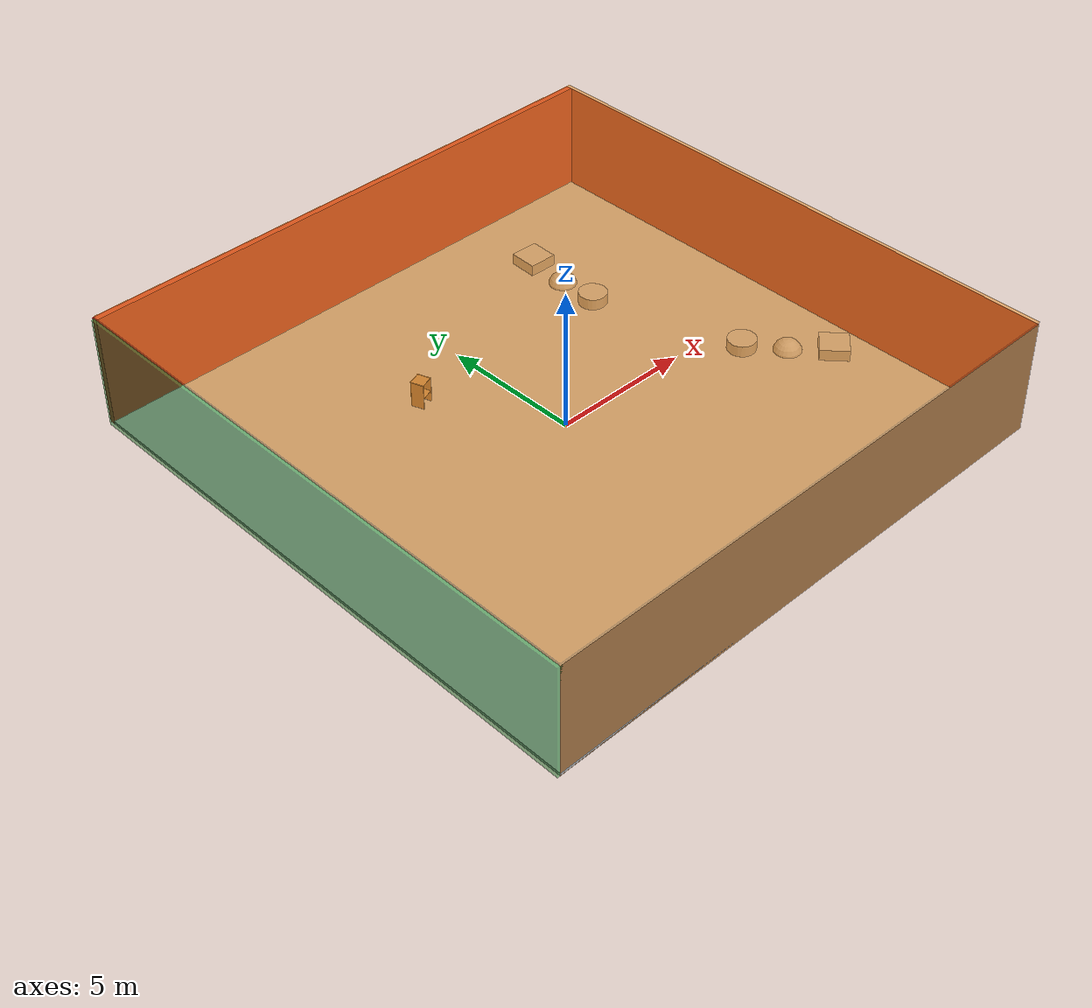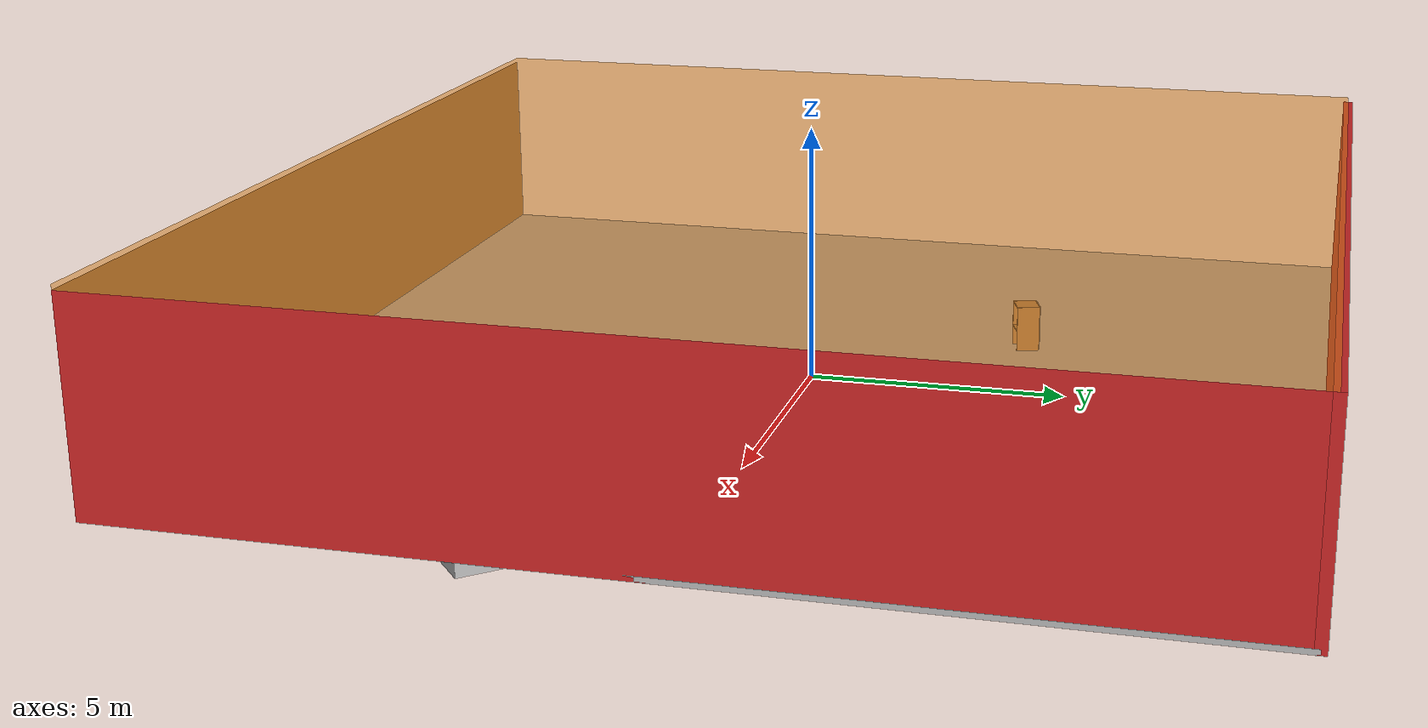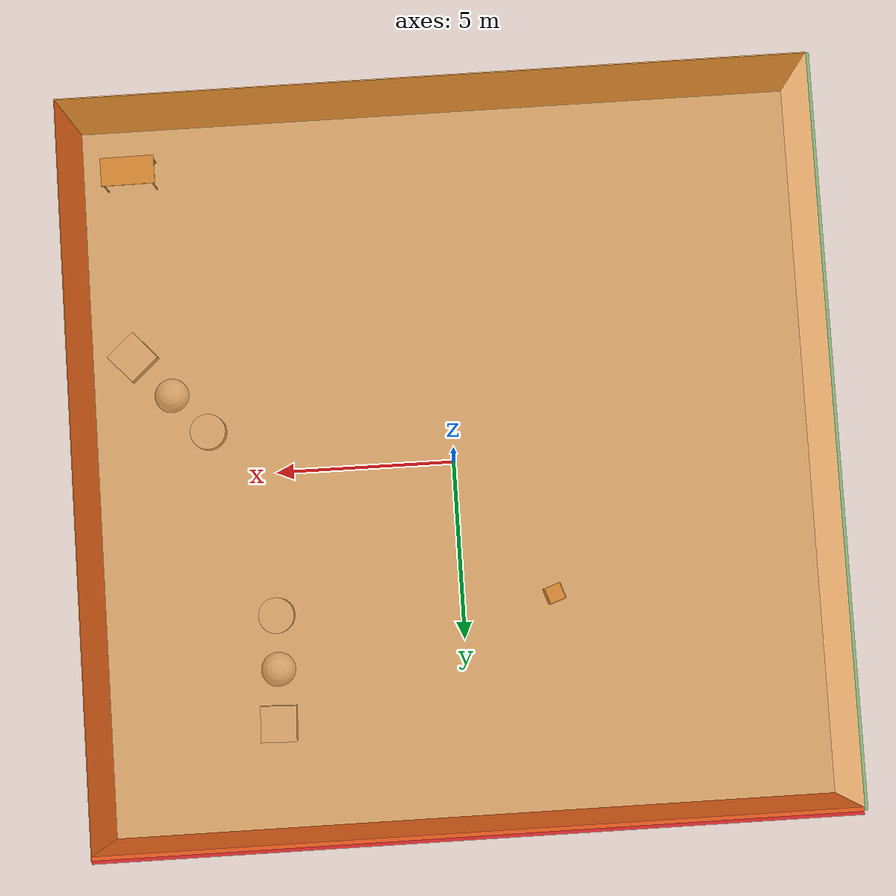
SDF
<sdf version="1.4">
 <world name="default">
  <physics type="ode">
   <max_step_size>0.001</max_step_size>
   <real_time_factor>1</real_time_factor>
   <real_time_update_rate>1000</real_time_update_rate>
   <gravity>0 0 -9.8</gravity>
  </physics>
  <scene><ambient>0.4 0.4 0.4 1</ambient><background>0.7 0.7 0.7 1</background><shadows>1</shadows></scene>
  <model name="Surrounding">
   <static>1</static>
   <link name="Ceiling">
    <collision name="Ceiling_Collision"><geometry><box><size>20 20 0.1</size></box></geometry></collision>
    <visual name="Ceiling_Visual">
     <geometry><box><size>20 20 0.1</size></box></geometry>
     <material>
      <script>
       <uri>file://media/materials/scripts/gazebo.material</uri>
       <name>Gazebo/OrangeTransparent</name>
      </script>
     </material>
    </visual>
    <pose>0 0 4.05 0 0 0</pose>
   </link>
   <link name="Wall_South">
    <collision name="Wall_South_Collision">
     <geometry><box><size>20 0 4</size></box></geometry>
     <pose>0 0 2 0 -0 0</pose>
    </collision>
    <visual name="Wall_South_Visual">
     <pose>0 0 2 0 -0 0</pose>
     <geometry><box><size>20 0 4</size></box></geometry>
     <material>
      <script><uri>file://media/materials/scripts/gazebo.material</uri><name>Gazebo/Wood</name></script>
     </material>
    </visual>
    <velocity_decay><linear>0</linear><angular>0</angular></velocity_decay>
    <pose>0 -10 0 0 -0 0</pose>
   </link>
   <link name="Wall_East">
    <collision name="Wall_21_Collision">
     <geometry><box><size>20 0 4</size></box></geometry>
     <pose>0 0 2 0 -0 0</pose>
    </collision>
    <visual name="Wall_21_Visual">
     <pose>0 0 2 0 -0 0</pose>
     <geometry><box><size>20 0 4</size></box></geometry>
     <material>
      <script><uri>file://media/materials/scripts/gazebo.material</uri><name>Gazebo/Red</name></script>
     </material>
    </visual>
    <velocity_decay><linear>0</linear><angular>0</angular></velocity_decay>
    <pose>10 0 0 0 -0 1.5708</pose>
   </link>
   <link name="Wall_North">
    <collision name="Wall_22_Collision">
     <geometry><box><size>20 0.2 4</size></box></geometry>
     <pose>0 0 2 0 -0 0</pose>
    </collision>
    <visual name="Wall_22_Visual">
     <pose>0 0 2 0 -0 0</pose>
     <geometry><box><size>20 0.2 4</size></box></geometry>
     <material>
      <script><uri>file://media/materials/scripts/gazebo.material</uri><name>Gazebo/Red</name></script>
     </material>
    </visual>
    <velocity_decay><linear>0</linear><angular>0</angular></velocity_decay>
    <pose>0 10 0 0 -0 0</pose>
   </link>
   <link name="Wall_West">
    <collision name="Wall_23_Collision">
     <geometry><box><size>20 0.2 4</size></box></geometry>
     <pose>0 0 2 0 -0 0</pose>
    </collision>
    <visual name="Wall_23_Visual">
     <pose>0 0 2 0 -0 0</pose>
     <geometry><box><size>20 0.2 4</size></box></geometry>
     <material>
      <script><uri>file://media/materials/scripts/gazebo.material</uri><name>Gazebo/GreenTransparent</name></script>
     </material>
    </visual>
    <velocity_decay><linear>0</linear><angular>0</angular></velocity_decay>
    <pose>-10 0 0 0 0 -1.5708</pose>
   </link>
   <link name="Ground_link">
    <collision name="collision">
     <pose>0 0 .05 0 -0 0</pose>
     <geometry><box><size>20 20 0.1</size></box></geometry>
    </collision>
    <visual name="visual">
     <pose>0 0 .05 0 -0 0</pose>
     <geometry><box><size>20 20 0.1</size></box></geometry>
     <material>
      <script><uri>file://media/materials/scripts/gazebo.material</uri><name>Gazebo/LightOff</name></script>
     </material>
    </visual>
   </link>
   <static>1</static>
  </model>
  <spherical_coordinates>
   <surface_model>EARTH_WGS84</surface_model>
   <latitude_deg>0</latitude_deg>
   <longitude_deg>0</longitude_deg>
   <elevation>0</elevation>
   <heading_deg>0</heading_deg>
  </spherical_coordinates>
  <light name="lightball_0" type="diffuse">
   <diffuse>0.8 0.8 0.8 1</diffuse>
   <specular>0.2 0.2 0.2 1</specular>
   <attenuation>
    <range>100</range>
    <constant>0.7</constant>
    <linear>0.01</linear>
    <quadratic>0.001</quadratic>
   </attenuation>
   <direction>-0.5 0.1 -0.9</direction>
   <pose>-9.47890755217 2.65459381779 3.79917862431 0 0 0</pose>
  </light>
  <light name="lightball_1" type="diffuse">
   <diffuse>0.8 0.8 0.8 1</diffuse>
   <specular>0.2 0.2 0.2 1</specular>
   <attenuation>
    <range>100</range>
    <constant>0.7</constant>
    <linear>0.01</linear>
    <quadratic>0.001</quadratic>
   </attenuation>
   <direction>-0.5 0.1 -0.9</direction>
   <pose>-6.43948031084 -4.5144401666 3.54511444971 0 0 0</pose>
  </light>
  <light name="lightball_2" type="diffuse">
   <diffuse>0.8 0.8 0.8 1</diffuse>
   <specular>0.2 0.2 0.2 1</specular>
   <attenuation>
    <range>100</range>
    <constant>0.7</constant>
    <linear>0.01</linear>
    <quadratic>0.001</quadratic>
   </attenuation>
   <direction>-0.5 0.1 -0.9</direction>
   <pose>-8.24441035771 8.45265457165 2.80632126426 0 0 0</pose>
  </light>
  <light name="lightball_3" type="diffuse">
   <diffuse>0.8 0.8 0.8 1</diffuse>
   <specular>0.2 0.2 0.2 1</specular>
   <attenuation>
    <range>100</range>
    <constant>0.7</constant>
    <linear>0.01</linear>
    <quadratic>0.001</quadratic>
   </attenuation>
   <direction>-0.5 0.1 -0.9</direction>
   <pose>-1.02856957732 -7.49712967411 0.806405113259 0 0 0</pose>
  </light>
  <light name="lightball_4" type="diffuse">
   <diffuse>0.8 0.8 0.8 1</diffuse>
   <specular>0.2 0.2 0.2 1</specular>
   <attenuation>
    <range>100</range>
    <constant>0.7</constant>
    <linear>0.01</linear>
    <quadratic>0.001</quadratic>
   </attenuation>
   <direction>-0.5 0.1 -0.9</direction>
   <pose>3.05109654949 8.98826993645 3.10072684507 0 0 0</pose>
  </light>
  <include><uri>model://cabinet</uri><pose>-2.55116941316 3.87907533668 0 0 0 1.90414155232</pose></include>
  <include>
   <uri>model://textured_shapes</uri>
   <pose>5.25876680359 5.50346763991 0 0 0 3.10765813199</pose>
  </include>
  <include><uri>model://table</uri><pose>8.61954594274 -8.67831705642 0 0 0 0.00874979553504</pose></include>
  <include>
   <uri>model://textured_shapes</uri>
   <pose>7.82966172945 -2.36354148934 0 0 0 0.730304551299</pose>
  </include>
 </world>
</sdf>

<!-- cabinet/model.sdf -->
<sdf version="1.5">
  <model name="cabinet">
    <static>true</static>
    <link name="cabinet_bottom_plate">
      <inertial>
        <pose>0 0 -1 0 0 0</pose>
        <inertia>
          <ixx>2.050000</ixx>
          <ixy>0</ixy>
          <ixz>0</ixz>
          <iyy>2.050000</iyy>
          <iyz>0</iyz>
          <izz>2.050000</izz>
        </inertia>
        <mass>25.000000</mass>
      </inertial>
      <collision name="cabinet_bottom_plate_geom">
        <pose>0 0 0.010000 0 0 0</pose>
        <geometry>
          <box>
            <size>0.450000 0.450000 0.020000</size>
          </box>
        </geometry>
      </collision>
      <visual name="cabinet_bottom_plate_geom_visual">
        <pose>0 0 0.010000 0 0 0</pose>
        <geometry>
          <box>
            <size>0.450000 0.450000 0.020000</size>
          </box>
        </geometry>
        <material>
          <script>
            <uri>model://media/materials/scripts/gazebo.material</uri>
            <name>Gazebo/Wood</name>
          </script>
        </material>
      </visual>
      <collision name="cabinet_bottom_plate_geom_cabinet_back_plate">
        <pose>0.235000 0 0.510000 0 0 0</pose>
        <geometry>
          <box>
            <size>0.020000 0.450000 1.020000</size>
          </box>
        </geometry>
      </collision>
      <visual name="cabinet_bottom_plate_geom_cabinet_back_plate_visual">
        <pose>0.235000 0 0.510000 0 0 0</pose>
        <geometry>
          <box>
            <size>0.020000 0.450000 1.020000</size>
          </box>
        </geometry>
        <material>
          <script>
            <uri>model://media/materials/scripts/gazebo.material</uri>
            <name>Gazebo/Wood</name>
          </script>
        </material>
      </visual>
      <collision name="cabinet_bottom_plate_geom_cabinet_left_plate">
        <pose>0 0.235000 0.510000 0 0 0</pose>
        <geometry>
          <box>
            <size>0.450000 0.020000 1.020000</size>
          </box>
        </geometry>
      </collision>
      <visual name="cabinet_bottom_plate_geom_cabinet_left_plate_visual">
        <pose>0 0.235000 0.510000 0 0 0</pose>
        <geometry>
          <box>
            <size>0.450000 0.020000 1.020000</size>
          </box>
        </geometry>
        <material>
          <script>
            <uri>model://media/materials/scripts/gazebo.material</uri>
            <name>Gazebo/Wood</name>
          </script>
        </material>
      </visual>
      <collision name="cabinet_bottom_plate_geom_cabinet_middle_plate">
        <pose>0 0 0.510000 0 0 0</pose>
        <geometry>
          <box>
            <size>0.450000 0.450000 0.020000</size>
          </box>
        </geometry>
      </collision>
      <visual name="cabinet_bottom_plate_geom_cabinet_middle_plate_visual">
        <pose>0 0 0.510000 0 0 0</pose>
        <geometry>
          <box>
            <size>0.450000 0.450000 0.020000</size>
          </box>
        </geometry>
        <material>
          <script>
            <uri>model://media/materials/scripts/gazebo.material</uri>
            <name>Gazebo/Wood</name>
          </script>
        </material>
      </visual>
      <collision name="cabinet_bottom_plate_geom_cabinet_right_plate">
        <pose>0 -0.235000 0.510000 0 0 0</pose>
        <geometry>
          <box>
            <size>0.450000 0.020000 1.020000</size>
          </box>
        </geometry>
      </collision>
      <visual name="cabinet_bottom_plate_geom_cabinet_right_plate_visual">
        <pose>0 -0.235000 0.510000 0 0 0</pose>
        <geometry>
          <box>
            <size>0.450000 0.020000 1.020000</size>
          </box>
        </geometry>
        <material>
          <script>
            <uri>model://media/materials/scripts/gazebo.material</uri>
            <name>Gazebo/Wood</name>
          </script>
        </material>
      </visual>
      <collision name="cabinet_bottom_plate_geom_cabinet_top_plate">
        <pose>0 0 1.010000 0 0 0</pose>
        <geometry>
          <box>
            <size>0.450000 0.450000 0.020000</size>
          </box>
        </geometry>
      </collision>
      <visual name="cabinet_bottom_plate_geom_cabinet_top_plate_visual">
        <pose>0 0 1.010000 0 0 0</pose>
        <geometry>
          <box>
            <size>0.450000 0.450000 0.020000</size>
          </box>
        </geometry>
        <material>
          <script>
            <uri>model://media/materials/scripts/gazebo.material</uri>
            <name>Gazebo/Wood</name>
          </script>
        </material>
      </visual>
    </link>
  </model>
</sdf>

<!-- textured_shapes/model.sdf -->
<sdf version="1.6">
  <model name="textured_shapes">
    <pose>0 0 0.5 0 0 0</pose>
    <link name="box">
      <pose>0 -1.5 0 0 0 0</pose>
      <collision name="collision">
        <geometry>
          <box>
            <size>1 1 1</size>
          </box>
        </geometry>
      </collision>
      <visual name="visual">
        <geometry>
          <box>
            <size>1 1 1</size>
          </box>
        </geometry>
        <material>
          <script>
            <uri>model://../model_source/models/textured_shapes/materials/scripts</uri>
            <uri>model://../model_source/models/textured_shapes/materials/textures</uri>
            <name>TexturedShape/Squares</name>
          </script>
        </material>
      </visual>
    </link>
    <link name="sphere">
      <collision name="collision">
        <geometry>
          <sphere>
            <radius>0.5</radius>
          </sphere>
        </geometry>
      </collision>
      <visual name="visual">
        <geometry>
          <sphere>
            <radius>0.5</radius>
          </sphere>
        </geometry>
        <material>
          <script>
            <uri>model://../model_source/models/textured_shapes/materials/scripts</uri>
            <uri>model://../model_source/models/textured_shapes/materials/textures</uri>
            <name>TexturedShape/Squares</name>
          </script>
        </material>
      </visual>
    </link>
    <link name="cylinder">
      <pose>0 1.5 0 0 0 0</pose>
      <collision name="collision">
        <geometry>
          <cylinder>
            <radius>0.5</radius>
            <length>1</length>
          </cylinder>
        </geometry>
      </collision>
      <visual name="visual">
        <geometry>
          <cylinder>
            <radius>0.5</radius>
            <length>1</length>
          </cylinder>
        </geometry>
        <material>
          <script>
            <uri>model://../model_source/models/textured_shapes/materials/scripts</uri>
            <uri>model://../model_source/models/textured_shapes/materials/textures</uri>
            <name>TexturedShape/Squares</name>
          </script>
        </material>
      </visual>
    </link>
  </model>
</sdf>

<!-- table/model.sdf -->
<sdf version="1.5">
  <model name="table">
    <static>true</static>
    <link name="link">
      <collision name="surface">
        <pose>0 0 1.0 0 0 0</pose>
        <geometry>
          <box>
            <size>1.5 0.8 0.03</size>
          </box>
        </geometry>
        <surface>
          <friction>
            <ode>
              <mu>0.6</mu>
              <mu2>0.6</mu2>
            </ode>
          </friction>
        </surface>
      </collision>
      <visual name="visual1">
        <pose>0 0 1.0 0 0 0</pose>
        <geometry>
          <box>
            <size>1.5 0.8 0.03</size>
          </box>
        </geometry>
        <material>
          <script>
            <uri>model://media/materials/scripts/gazebo.material</uri>
            <name>Gazebo/Wood</name>
          </script>
        </material>
      </visual>
      <collision name="front_left_leg">
        <pose>0.68 0.38 0.5 0 0 0</pose>
        <geometry>
          <cylinder>
            <radius>0.02</radius>
            <length>1.0</length>
          </cylinder>
        </geometry>
      </collision>
      <visual name="front_left_leg">
        <pose>0.68 0.38 0.5 0 0 0</pose>
        <geometry>
          <cylinder>
            <radius>0.02</radius>
            <length>1.0</length>
          </cylinder>
        </geometry>
        <material>
          <script>
            <uri>model://media/materials/scripts/gazebo.material</uri>
            <name>Gazebo/Grey</name>
          </script>
        </material>
      </visual>
      <collision name="front_right_leg">
        <pose>0.68 -0.38 0.5 0 0 0</pose>
        <geometry>
          <cylinder>
            <radius>0.02</radius>
            <length>1.0</length>
          </cylinder>
        </geometry>
      </collision>
      <visual name="front_right_leg">
        <pose>0.68 -0.38 0.5 0 0 0</pose>
        <geometry>
          <cylinder>
            <radius>0.02</radius>
            <length>1.0</length>
          </cylinder>
        </geometry>
        <material>
          <script>
            <uri>model://media/materials/scripts/gazebo.material</uri>
            <name>Gazebo/Grey</name>
          </script>
        </material>
      </visual>
      <collision name="back_right_leg">
        <pose>-0.68 -0.38 0.5 0 0 0</pose>
        <geometry>
          <cylinder>
            <radius>0.02</radius>
            <length>1.0</length>
          </cylinder>
        </geometry>
      </collision>
      <visual name="back_right_leg">
        <pose>-0.68 -0.38 0.5 0 0 0</pose>
        <geometry>
          <cylinder>
            <radius>0.02</radius>
            <length>1.0</length>
          </cylinder>
        </geometry>
        <material>
          <script>
            <uri>model://media/materials/scripts/gazebo.material</uri>
            <name>Gazebo/Grey</name>
          </script>
        </material>
      </visual>
      <collision name="back_left_leg">
        <pose>-0.68 0.38 0.5 0 0 0</pose>
        <geometry>
          <cylinder>
            <radius>0.02</radius>
            <length>1.0</length>
          </cylinder>
        </geometry>
      </collision>
      <visual name="back_left_leg">
        <pose>-0.68 0.38 0.5 0 0 0</pose>
        <geometry>
          <cylinder>
            <radius>0.02</radius>
            <length>1.0</length>
          </cylinder>
        </geometry>
        <material>
          <script>
            <uri>model://media/materials/scripts/gazebo.material</uri>
            <name>Gazebo/Grey</name>
          </script>
        </material>
      </visual>
    </link>
  </model>
</sdf>
